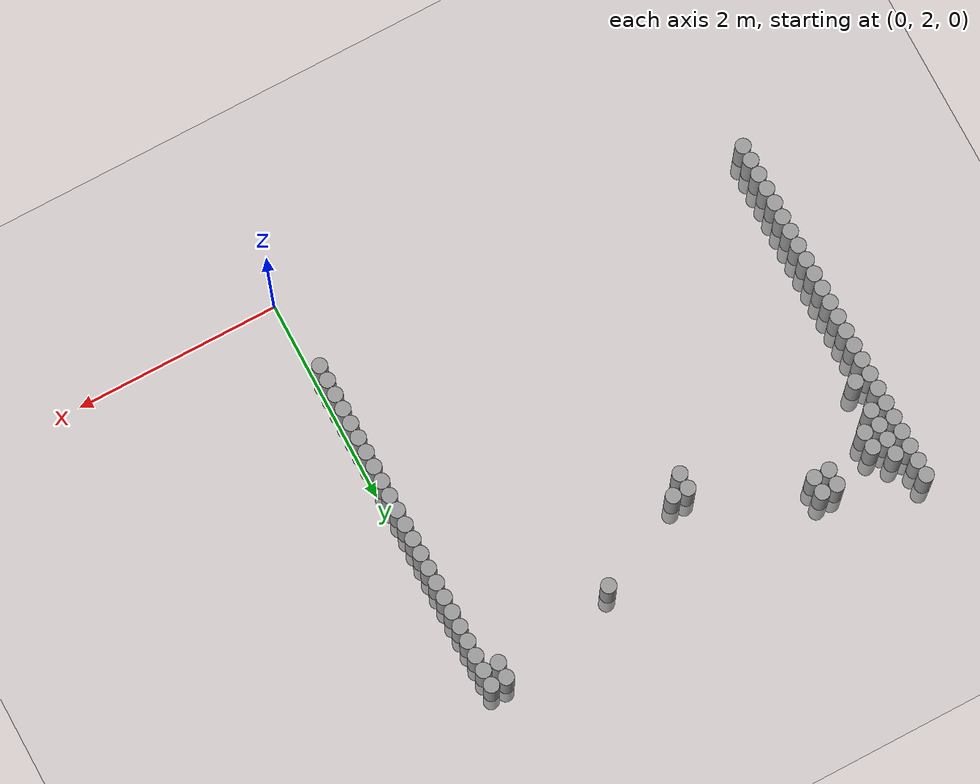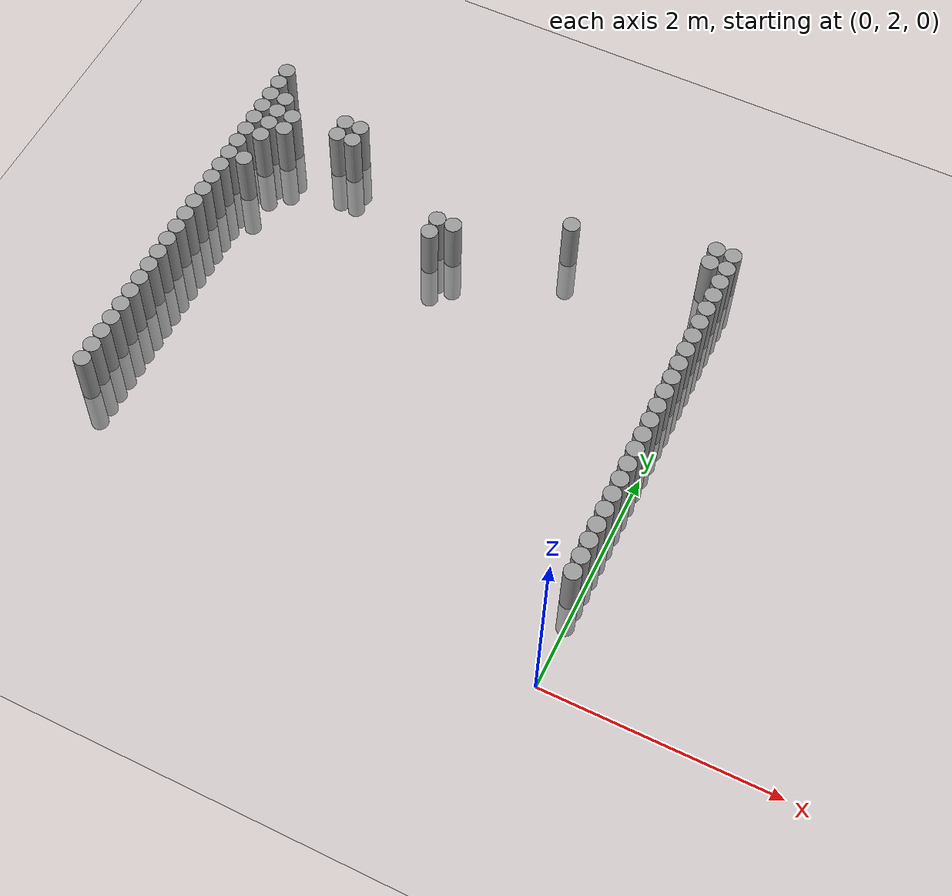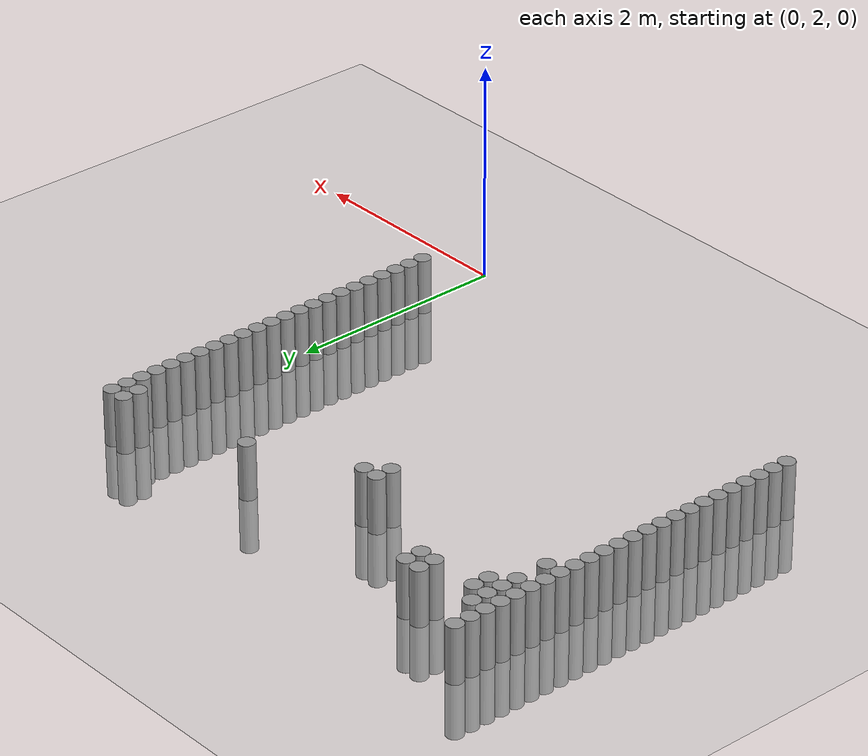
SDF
<sdf version="1.6">
 <world name="default">
  <model name="ground_plane">
   <static>1</static>
   <static>1</static>
   <link name="link">
    <collision name="collision">
     <geometry><plane><normal>0 0 1</normal><size>100 100</size></plane></geometry>
     <surface><friction><ode><mu>100</mu><mu2>50</mu2></ode></friction></surface>
    </collision>
    <visual name="visual">
     <cast_shadows>0</cast_shadows>
     <geometry><plane><normal>0 0 1</normal><size>100 100</size></plane></geometry>
     <material>
      <script><uri>file://media/materials/scripts/gazebo.material</uri><name>Gazebo/Grey</name></script>
     </material>
    </visual>
   </link>
  </model>
  <model name="unit_cylinder_64">
   <static>1</static>
   <pose>-0.075000 2.775000 0.000000 0.000000 0.000000 0.000000</pose>
   <link name="link">
    <inertial>
     <mass>1</mass>
     <inertia><ixx>0.145833</ixx><ixy>0</ixy><ixz>0</ixz><iyy>0.145833</iyy><iyz>0</iyz><izz>0.125</izz></inertia>
    </inertial>
    <collision name="collision">
     <geometry><cylinder><radius>0.075000</radius><length>1</length></cylinder></geometry>
    </collision>
    <visual name="visual">
     <geometry><cylinder><radius>0.075000</radius><length>1</length></cylinder></geometry>
     <material>
      <script><name>Gazebo/Grey</name><uri>file://media/materials/scripts/gazebo.material</uri></script>
     </material>
    </visual>
   </link>
  </model>
  <model name="unit_cylinder_65">
   <static>1</static>
   <pose>-4.425000 2.775000 0.000000 0.000000 0.000000 0.000000</pose>
   <link name="link">
    <inertial>
     <mass>1</mass>
     <inertia><ixx>0.145833</ixx><ixy>0</ixy><ixz>0</ixz><iyy>0.145833</iyy><iyz>0</iyz><izz>0.125</izz></inertia>
    </inertial>
    <collision name="collision">
     <geometry><cylinder><radius>0.075000</radius><length>1</length></cylinder></geometry>
    </collision>
    <visual name="visual">
     <geometry><cylinder><radius>0.075000</radius><length>1</length></cylinder></geometry>
     <material>
      <script><name>Gazebo/Grey</name><uri>file://media/materials/scripts/gazebo.material</uri></script>
     </material>
    </visual>
   </link>
  </model>
  <model name="unit_cylinder_66">
   <static>1</static>
   <pose>-0.075000 2.925000 0.000000 0.000000 0.000000 0.000000</pose>
   <link name="link">
    <inertial>
     <mass>1</mass>
     <inertia><ixx>0.145833</ixx><ixy>0</ixy><ixz>0</ixz><iyy>0.145833</iyy><iyz>0</iyz><izz>0.125</izz></inertia>
    </inertial>
    <collision name="collision">
     <geometry><cylinder><radius>0.075000</radius><length>1</length></cylinder></geometry>
    </collision>
    <visual name="visual">
     <geometry><cylinder><radius>0.075000</radius><length>1</length></cylinder></geometry>
     <material>
      <script><name>Gazebo/Grey</name><uri>file://media/materials/scripts/gazebo.material</uri></script>
     </material>
    </visual>
   </link>
  </model>
  <model name="unit_cylinder_67">
   <static>1</static>
   <pose>-4.425000 2.925000 0.000000 0.000000 0.000000 0.000000</pose>
   <link name="link">
    <inertial>
     <mass>1</mass>
     <inertia><ixx>0.145833</ixx><ixy>0</ixy><ixz>0</ixz><iyy>0.145833</iyy><iyz>0</iyz><izz>0.125</izz></inertia>
    </inertial>
    <collision name="collision">
     <geometry><cylinder><radius>0.075000</radius><length>1</length></cylinder></geometry>
    </collision>
    <visual name="visual">
     <geometry><cylinder><radius>0.075000</radius><length>1</length></cylinder></geometry>
     <material>
      <script><name>Gazebo/Grey</name><uri>file://media/materials/scripts/gazebo.material</uri></script>
     </material>
    </visual>
   </link>
  </model>
  <model name="unit_cylinder_68">
   <static>1</static>
   <pose>-0.075000 3.075000 0.000000 0.000000 0.000000 0.000000</pose>
   <link name="link">
    <inertial>
     <mass>1</mass>
     <inertia><ixx>0.145833</ixx><ixy>0</ixy><ixz>0</ixz><iyy>0.145833</iyy><iyz>0</iyz><izz>0.125</izz></inertia>
    </inertial>
    <collision name="collision">
     <geometry><cylinder><radius>0.075000</radius><length>1</length></cylinder></geometry>
    </collision>
    <visual name="visual">
     <geometry><cylinder><radius>0.075000</radius><length>1</length></cylinder></geometry>
     <material>
      <script><name>Gazebo/Grey</name><uri>file://media/materials/scripts/gazebo.material</uri></script>
     </material>
    </visual>
   </link>
  </model>
  <model name="unit_cylinder_69">
   <static>1</static>
   <pose>-4.425000 3.075000 0.000000 0.000000 0.000000 0.000000</pose>
   <link name="link">
    <inertial>
     <mass>1</mass>
     <inertia><ixx>0.145833</ixx><ixy>0</ixy><ixz>0</ixz><iyy>0.145833</iyy><iyz>0</iyz><izz>0.125</izz></inertia>
    </inertial>
    <collision name="collision">
     <geometry><cylinder><radius>0.075000</radius><length>1</length></cylinder></geometry>
    </collision>
    <visual name="visual">
     <geometry><cylinder><radius>0.075000</radius><length>1</length></cylinder></geometry>
     <material>
      <script><name>Gazebo/Grey</name><uri>file://media/materials/scripts/gazebo.material</uri></script>
     </material>
    </visual>
   </link>
  </model>
  <model name="unit_cylinder_70">
   <static>1</static>
   <pose>-0.075000 3.225000 0.000000 0.000000 0.000000 0.000000</pose>
   <link name="link">
    <inertial>
     <mass>1</mass>
     <inertia><ixx>0.145833</ixx><ixy>0</ixy><ixz>0</ixz><iyy>0.145833</iyy><iyz>0</iyz><izz>0.125</izz></inertia>
    </inertial>
    <collision name="collision">
     <geometry><cylinder><radius>0.075000</radius><length>1</length></cylinder></geometry>
    </collision>
    <visual name="visual">
     <geometry><cylinder><radius>0.075000</radius><length>1</length></cylinder></geometry>
     <material>
      <script><name>Gazebo/Grey</name><uri>file://media/materials/scripts/gazebo.material</uri></script>
     </material>
    </visual>
   </link>
  </model>
  <model name="unit_cylinder_71">
   <static>1</static>
   <pose>-4.425000 3.225000 0.000000 0.000000 0.000000 0.000000</pose>
   <link name="link">
    <inertial>
     <mass>1</mass>
     <inertia><ixx>0.145833</ixx><ixy>0</ixy><ixz>0</ixz><iyy>0.145833</iyy><iyz>0</iyz><izz>0.125</izz></inertia>
    </inertial>
    <collision name="collision">
     <geometry><cylinder><radius>0.075000</radius><length>1</length></cylinder></geometry>
    </collision>
    <visual name="visual">
     <geometry><cylinder><radius>0.075000</radius><length>1</length></cylinder></geometry>
     <material>
      <script><name>Gazebo/Grey</name><uri>file://media/materials/scripts/gazebo.material</uri></script>
     </material>
    </visual>
   </link>
  </model>
  <model name="unit_cylinder_72">
   <static>1</static>
   <pose>-0.075000 3.375000 0.000000 0.000000 0.000000 0.000000</pose>
   <link name="link">
    <inertial>
     <mass>1</mass>
     <inertia><ixx>0.145833</ixx><ixy>0</ixy><ixz>0</ixz><iyy>0.145833</iyy><iyz>0</iyz><izz>0.125</izz></inertia>
    </inertial>
    <collision name="collision">
     <geometry><cylinder><radius>0.075000</radius><length>1</length></cylinder></geometry>
    </collision>
    <visual name="visual">
     <geometry><cylinder><radius>0.075000</radius><length>1</length></cylinder></geometry>
     <material>
      <script><name>Gazebo/Grey</name><uri>file://media/materials/scripts/gazebo.material</uri></script>
     </material>
    </visual>
   </link>
  </model>
  <model name="unit_cylinder_73">
   <static>1</static>
   <pose>-4.425000 3.375000 0.000000 0.000000 0.000000 0.000000</pose>
   <link name="link">
    <inertial>
     <mass>1</mass>
     <inertia><ixx>0.145833</ixx><ixy>0</ixy><ixz>0</ixz><iyy>0.145833</iyy><iyz>0</iyz><izz>0.125</izz></inertia>
    </inertial>
    <collision name="collision">
     <geometry><cylinder><radius>0.075000</radius><length>1</length></cylinder></geometry>
    </collision>
    <visual name="visual">
     <geometry><cylinder><radius>0.075000</radius><length>1</length></cylinder></geometry>
     <material>
      <script><name>Gazebo/Grey</name><uri>file://media/materials/scripts/gazebo.material</uri></script>
     </material>
    </visual>
   </link>
  </model>
  <model name="unit_cylinder_74">
   <static>1</static>
   <pose>-0.075000 3.525000 0.000000 0.000000 0.000000 0.000000</pose>
   <link name="link">
    <inertial>
     <mass>1</mass>
     <inertia><ixx>0.145833</ixx><ixy>0</ixy><ixz>0</ixz><iyy>0.145833</iyy><iyz>0</iyz><izz>0.125</izz></inertia>
    </inertial>
    <collision name="collision">
     <geometry><cylinder><radius>0.075000</radius><length>1</length></cylinder></geometry>
    </collision>
    <visual name="visual">
     <geometry><cylinder><radius>0.075000</radius><length>1</length></cylinder></geometry>
     <material>
      <script><name>Gazebo/Grey</name><uri>file://media/materials/scripts/gazebo.material</uri></script>
     </material>
    </visual>
   </link>
  </model>
  <model name="unit_cylinder_75">
   <static>1</static>
   <pose>-4.425000 3.525000 0.000000 0.000000 0.000000 0.000000</pose>
   <link name="link">
    <inertial>
     <mass>1</mass>
     <inertia><ixx>0.145833</ixx><ixy>0</ixy><ixz>0</ixz><iyy>0.145833</iyy><iyz>0</iyz><izz>0.125</izz></inertia>
    </inertial>
    <collision name="collision">
     <geometry><cylinder><radius>0.075000</radius><length>1</length></cylinder></geometry>
    </collision>
    <visual name="visual">
     <geometry><cylinder><radius>0.075000</radius><length>1</length></cylinder></geometry>
     <material>
      <script><name>Gazebo/Grey</name><uri>file://media/materials/scripts/gazebo.material</uri></script>
     </material>
    </visual>
   </link>
  </model>
  <model name="unit_cylinder_76">
   <static>1</static>
   <pose>-0.075000 3.675000 0.000000 0.000000 0.000000 0.000000</pose>
   <link name="link">
    <inertial>
     <mass>1</mass>
     <inertia><ixx>0.145833</ixx><ixy>0</ixy><ixz>0</ixz><iyy>0.145833</iyy><iyz>0</iyz><izz>0.125</izz></inertia>
    </inertial>
    <collision name="collision">
     <geometry><cylinder><radius>0.075000</radius><length>1</length></cylinder></geometry>
    </collision>
    <visual name="visual">
     <geometry><cylinder><radius>0.075000</radius><length>1</length></cylinder></geometry>
     <material>
      <script><name>Gazebo/Grey</name><uri>file://media/materials/scripts/gazebo.material</uri></script>
     </material>
    </visual>
   </link>
  </model>
  <model name="unit_cylinder_77">
   <static>1</static>
   <pose>-4.425000 3.675000 0.000000 0.000000 0.000000 0.000000</pose>
   <link name="link">
    <inertial>
     <mass>1</mass>
     <inertia><ixx>0.145833</ixx><ixy>0</ixy><ixz>0</ixz><iyy>0.145833</iyy><iyz>0</iyz><izz>0.125</izz></inertia>
    </inertial>
    <collision name="collision">
     <geometry><cylinder><radius>0.075000</radius><length>1</length></cylinder></geometry>
    </collision>
    <visual name="visual">
     <geometry><cylinder><radius>0.075000</radius><length>1</length></cylinder></geometry>
     <material>
      <script><name>Gazebo/Grey</name><uri>file://media/materials/scripts/gazebo.material</uri></script>
     </material>
    </visual>
   </link>
  </model>
  <model name="unit_cylinder_78">
   <static>1</static>
   <pose>-0.075000 3.825000 0.000000 0.000000 0.000000 0.000000</pose>
   <link name="link">
    <inertial>
     <mass>1</mass>
     <inertia><ixx>0.145833</ixx><ixy>0</ixy><ixz>0</ixz><iyy>0.145833</iyy><iyz>0</iyz><izz>0.125</izz></inertia>
    </inertial>
    <collision name="collision">
     <geometry><cylinder><radius>0.075000</radius><length>1</length></cylinder></geometry>
    </collision>
    <visual name="visual">
     <geometry><cylinder><radius>0.075000</radius><length>1</length></cylinder></geometry>
     <material>
      <script><name>Gazebo/Grey</name><uri>file://media/materials/scripts/gazebo.material</uri></script>
     </material>
    </visual>
   </link>
  </model>
  <model name="unit_cylinder_79">
   <static>1</static>
   <pose>-4.425000 3.825000 0.000000 0.000000 0.000000 0.000000</pose>
   <link name="link">
    <inertial>
     <mass>1</mass>
     <inertia><ixx>0.145833</ixx><ixy>0</ixy><ixz>0</ixz><iyy>0.145833</iyy><iyz>0</iyz><izz>0.125</izz></inertia>
    </inertial>
    <collision name="collision">
     <geometry><cylinder><radius>0.075000</radius><length>1</length></cylinder></geometry>
    </collision>
    <visual name="visual">
     <geometry><cylinder><radius>0.075000</radius><length>1</length></cylinder></geometry>
     <material>
      <script><name>Gazebo/Grey</name><uri>file://media/materials/scripts/gazebo.material</uri></script>
     </material>
    </visual>
   </link>
  </model>
  <model name="unit_cylinder_80">
   <static>1</static>
   <pose>-0.075000 3.975000 0.000000 0.000000 0.000000 0.000000</pose>
   <link name="link">
    <inertial>
     <mass>1</mass>
     <inertia><ixx>0.145833</ixx><ixy>0</ixy><ixz>0</ixz><iyy>0.145833</iyy><iyz>0</iyz><izz>0.125</izz></inertia>
    </inertial>
    <collision name="collision">
     <geometry><cylinder><radius>0.075000</radius><length>1</length></cylinder></geometry>
    </collision>
    <visual name="visual">
     <geometry><cylinder><radius>0.075000</radius><length>1</length></cylinder></geometry>
     <material>
      <script><name>Gazebo/Grey</name><uri>file://media/materials/scripts/gazebo.material</uri></script>
     </material>
    </visual>
   </link>
  </model>
  <model name="unit_cylinder_81">
   <static>1</static>
   <pose>-4.425000 3.975000 0.000000 0.000000 0.000000 0.000000</pose>
   <link name="link">
    <inertial>
     <mass>1</mass>
     <inertia><ixx>0.145833</ixx><ixy>0</ixy><ixz>0</ixz><iyy>0.145833</iyy><iyz>0</iyz><izz>0.125</izz></inertia>
    </inertial>
    <collision name="collision">
     <geometry><cylinder><radius>0.075000</radius><length>1</length></cylinder></geometry>
    </collision>
    <visual name="visual">
     <geometry><cylinder><radius>0.075000</radius><length>1</length></cylinder></geometry>
     <material>
      <script><name>Gazebo/Grey</name><uri>file://media/materials/scripts/gazebo.material</uri></script>
     </material>
    </visual>
   </link>
  </model>
  <model name="unit_cylinder_82">
   <static>1</static>
   <pose>-0.075000 4.125000 0.000000 0.000000 0.000000 0.000000</pose>
   <link name="link">
    <inertial>
     <mass>1</mass>
     <inertia><ixx>0.145833</ixx><ixy>0</ixy><ixz>0</ixz><iyy>0.145833</iyy><iyz>0</iyz><izz>0.125</izz></inertia>
    </inertial>
    <collision name="collision">
     <geometry><cylinder><radius>0.075000</radius><length>1</length></cylinder></geometry>
    </collision>
    <visual name="visual">
     <geometry><cylinder><radius>0.075000</radius><length>1</length></cylinder></geometry>
     <material>
      <script><name>Gazebo/Grey</name><uri>file://media/materials/scripts/gazebo.material</uri></script>
     </material>
    </visual>
   </link>
  </model>
  <model name="unit_cylinder_83">
   <static>1</static>
   <pose>-4.425000 4.125000 0.000000 0.000000 0.000000 0.000000</pose>
   <link name="link">
    <inertial>
     <mass>1</mass>
     <inertia><ixx>0.145833</ixx><ixy>0</ixy><ixz>0</ixz><iyy>0.145833</iyy><iyz>0</iyz><izz>0.125</izz></inertia>
    </inertial>
    <collision name="collision">
     <geometry><cylinder><radius>0.075000</radius><length>1</length></cylinder></geometry>
    </collision>
    <visual name="visual">
     <geometry><cylinder><radius>0.075000</radius><length>1</length></cylinder></geometry>
     <material>
      <script><name>Gazebo/Grey</name><uri>file://media/materials/scripts/gazebo.material</uri></script>
     </material>
    </visual>
   </link>
  </model>
  <model name="unit_cylinder_84">
   <static>1</static>
   <pose>-0.075000 4.275000 0.000000 0.000000 0.000000 0.000000</pose>
   <link name="link">
    <inertial>
     <mass>1</mass>
     <inertia><ixx>0.145833</ixx><ixy>0</ixy><ixz>0</ixz><iyy>0.145833</iyy><iyz>0</iyz><izz>0.125</izz></inertia>
    </inertial>
    <collision name="collision">
     <geometry><cylinder><radius>0.075000</radius><length>1</length></cylinder></geometry>
    </collision>
    <visual name="visual">
     <geometry><cylinder><radius>0.075000</radius><length>1</length></cylinder></geometry>
     <material>
      <script><name>Gazebo/Grey</name><uri>file://media/materials/scripts/gazebo.material</uri></script>
     </material>
    </visual>
   </link>
  </model>
  <model name="unit_cylinder_85">
   <static>1</static>
   <pose>-4.425000 4.275000 0.000000 0.000000 0.000000 0.000000</pose>
   <link name="link">
    <inertial>
     <mass>1</mass>
     <inertia><ixx>0.145833</ixx><ixy>0</ixy><ixz>0</ixz><iyy>0.145833</iyy><iyz>0</iyz><izz>0.125</izz></inertia>
    </inertial>
    <collision name="collision">
     <geometry><cylinder><radius>0.075000</radius><length>1</length></cylinder></geometry>
    </collision>
    <visual name="visual">
     <geometry><cylinder><radius>0.075000</radius><length>1</length></cylinder></geometry>
     <material>
      <script><name>Gazebo/Grey</name><uri>file://media/materials/scripts/gazebo.material</uri></script>
     </material>
    </visual>
   </link>
  </model>
  <model name="unit_cylinder_86">
   <static>1</static>
   <pose>-0.075000 4.425000 0.000000 0.000000 0.000000 0.000000</pose>
   <link name="link">
    <inertial>
     <mass>1</mass>
     <inertia><ixx>0.145833</ixx><ixy>0</ixy><ixz>0</ixz><iyy>0.145833</iyy><iyz>0</iyz><izz>0.125</izz></inertia>
    </inertial>
    <collision name="collision">
     <geometry><cylinder><radius>0.075000</radius><length>1</length></cylinder></geometry>
    </collision>
    <visual name="visual">
     <geometry><cylinder><radius>0.075000</radius><length>1</length></cylinder></geometry>
     <material>
      <script><name>Gazebo/Grey</name><uri>file://media/materials/scripts/gazebo.material</uri></script>
     </material>
    </visual>
   </link>
  </model>
  <model name="unit_cylinder_87">
   <static>1</static>
   <pose>-4.425000 4.425000 0.000000 0.000000 0.000000 0.000000</pose>
   <link name="link">
    <inertial>
     <mass>1</mass>
     <inertia><ixx>0.145833</ixx><ixy>0</ixy><ixz>0</ixz><iyy>0.145833</iyy><iyz>0</iyz><izz>0.125</izz></inertia>
    </inertial>
    <collision name="collision">
     <geometry><cylinder><radius>0.075000</radius><length>1</length></cylinder></geometry>
    </collision>
    <visual name="visual">
     <geometry><cylinder><radius>0.075000</radius><length>1</length></cylinder></geometry>
     <material>
      <script><name>Gazebo/Grey</name><uri>file://media/materials/scripts/gazebo.material</uri></script>
     </material>
    </visual>
   </link>
  </model>
  <model name="unit_cylinder_88">
   <static>1</static>
   <pose>-0.075000 4.575000 0.000000 0.000000 0.000000 0.000000</pose>
   <link name="link">
    <inertial>
     <mass>1</mass>
     <inertia><ixx>0.145833</ixx><ixy>0</ixy><ixz>0</ixz><iyy>0.145833</iyy><iyz>0</iyz><izz>0.125</izz></inertia>
    </inertial>
    <collision name="collision">
     <geometry><cylinder><radius>0.075000</radius><length>1</length></cylinder></geometry>
    </collision>
    <visual name="visual">
     <geometry><cylinder><radius>0.075000</radius><length>1</length></cylinder></geometry>
     <material>
      <script><name>Gazebo/Grey</name><uri>file://media/materials/scripts/gazebo.material</uri></script>
     </material>
    </visual>
   </link>
  </model>
  <model name="unit_cylinder_89">
   <static>1</static>
   <pose>-4.425000 4.575000 0.000000 0.000000 0.000000 0.000000</pose>
   <link name="link">
    <inertial>
     <mass>1</mass>
     <inertia><ixx>0.145833</ixx><ixy>0</ixy><ixz>0</ixz><iyy>0.145833</iyy><iyz>0</iyz><izz>0.125</izz></inertia>
    </inertial>
    <collision name="collision">
     <geometry><cylinder><radius>0.075000</radius><length>1</length></cylinder></geometry>
    </collision>
    <visual name="visual">
     <geometry><cylinder><radius>0.075000</radius><length>1</length></cylinder></geometry>
     <material>
      <script><name>Gazebo/Grey</name><uri>file://media/materials/scripts/gazebo.material</uri></script>
     </material>
    </visual>
   </link>
  </model>
  <model name="unit_cylinder_90">
   <static>1</static>
   <pose>-0.075000 4.725000 0.000000 0.000000 0.000000 0.000000</pose>
   <link name="link">
    <inertial>
     <mass>1</mass>
     <inertia><ixx>0.145833</ixx><ixy>0</ixy><ixz>0</ixz><iyy>0.145833</iyy><iyz>0</iyz><izz>0.125</izz></inertia>
    </inertial>
    <collision name="collision">
     <geometry><cylinder><radius>0.075000</radius><length>1</length></cylinder></geometry>
    </collision>
    <visual name="visual">
     <geometry><cylinder><radius>0.075000</radius><length>1</length></cylinder></geometry>
     <material>
      <script><name>Gazebo/Grey</name><uri>file://media/materials/scripts/gazebo.material</uri></script>
     </material>
    </visual>
   </link>
  </model>
  <model name="unit_cylinder_91">
   <static>1</static>
   <pose>-4.425000 4.725000 0.000000 0.000000 0.000000 0.000000</pose>
   <link name="link">
    <inertial>
     <mass>1</mass>
     <inertia><ixx>0.145833</ixx><ixy>0</ixy><ixz>0</ixz><iyy>0.145833</iyy><iyz>0</iyz><izz>0.125</izz></inertia>
    </inertial>
    <collision name="collision">
     <geometry><cylinder><radius>0.075000</radius><length>1</length></cylinder></geometry>
    </collision>
    <visual name="visual">
     <geometry><cylinder><radius>0.075000</radius><length>1</length></cylinder></geometry>
     <material>
      <script><name>Gazebo/Grey</name><uri>file://media/materials/scripts/gazebo.material</uri></script>
     </material>
    </visual>
   </link>
  </model>
  <model name="unit_cylinder_92">
   <static>1</static>
   <pose>-0.075000 4.875000 0.000000 0.000000 0.000000 0.000000</pose>
   <link name="link">
    <inertial>
     <mass>1</mass>
     <inertia><ixx>0.145833</ixx><ixy>0</ixy><ixz>0</ixz><iyy>0.145833</iyy><iyz>0</iyz><izz>0.125</izz></inertia>
    </inertial>
    <collision name="collision">
     <geometry><cylinder><radius>0.075000</radius><length>1</length></cylinder></geometry>
    </collision>
    <visual name="visual">
     <geometry><cylinder><radius>0.075000</radius><length>1</length></cylinder></geometry>
     <material>
      <script><name>Gazebo/Grey</name><uri>file://media/materials/scripts/gazebo.material</uri></script>
     </material>
    </visual>
   </link>
  </model>
  <model name="unit_cylinder_93">
   <static>1</static>
   <pose>-4.425000 4.875000 0.000000 0.000000 0.000000 0.000000</pose>
   <link name="link">
    <inertial>
     <mass>1</mass>
     <inertia><ixx>0.145833</ixx><ixy>0</ixy><ixz>0</ixz><iyy>0.145833</iyy><iyz>0</iyz><izz>0.125</izz></inertia>
    </inertial>
    <collision name="collision">
     <geometry><cylinder><radius>0.075000</radius><length>1</length></cylinder></geometry>
    </collision>
    <visual name="visual">
     <geometry><cylinder><radius>0.075000</radius><length>1</length></cylinder></geometry>
     <material>
      <script><name>Gazebo/Grey</name><uri>file://media/materials/scripts/gazebo.material</uri></script>
     </material>
    </visual>
   </link>
  </model>
  <model name="unit_cylinder_94">
   <static>1</static>
   <pose>-0.075000 5.025000 0.000000 0.000000 0.000000 0.000000</pose>
   <link name="link">
    <inertial>
     <mass>1</mass>
     <inertia><ixx>0.145833</ixx><ixy>0</ixy><ixz>0</ixz><iyy>0.145833</iyy><iyz>0</iyz><izz>0.125</izz></inertia>
    </inertial>
    <collision name="collision">
     <geometry><cylinder><radius>0.075000</radius><length>1</length></cylinder></geometry>
    </collision>
    <visual name="visual">
     <geometry><cylinder><radius>0.075000</radius><length>1</length></cylinder></geometry>
     <material>
      <script><name>Gazebo/Grey</name><uri>file://media/materials/scripts/gazebo.material</uri></script>
     </material>
    </visual>
   </link>
  </model>
  <model name="unit_cylinder_95">
   <static>1</static>
   <pose>-4.425000 5.025000 0.000000 0.000000 0.000000 0.000000</pose>
   <link name="link">
    <inertial>
     <mass>1</mass>
     <inertia><ixx>0.145833</ixx><ixy>0</ixy><ixz>0</ixz><iyy>0.145833</iyy><iyz>0</iyz><izz>0.125</izz></inertia>
    </inertial>
    <collision name="collision">
     <geometry><cylinder><radius>0.075000</radius><length>1</length></cylinder></geometry>
    </collision>
    <visual name="visual">
     <geometry><cylinder><radius>0.075000</radius><length>1</length></cylinder></geometry>
     <material>
      <script><name>Gazebo/Grey</name><uri>file://media/materials/scripts/gazebo.material</uri></script>
     </material>
    </visual>
   </link>
  </model>
  <model name="unit_cylinder_96">
   <static>1</static>
   <pose>-4.425000 5.175000 0.000000 0.000000 0.000000 0.000000</pose>
   <link name="link">
    <inertial>
     <mass>1</mass>
     <inertia><ixx>0.145833</ixx><ixy>0</ixy><ixz>0</ixz><iyy>0.145833</iyy><iyz>0</iyz><izz>0.125</izz></inertia>
    </inertial>
    <collision name="collision">
     <geometry><cylinder><radius>0.075000</radius><length>1</length></cylinder></geometry>
    </collision>
    <visual name="visual">
     <geometry><cylinder><radius>0.075000</radius><length>1</length></cylinder></geometry>
     <material>
      <script><name>Gazebo/Grey</name><uri>file://media/materials/scripts/gazebo.material</uri></script>
     </material>
    </visual>
   </link>
  </model>
  <model name="unit_cylinder_97">
   <static>1</static>
   <pose>-4.425000 5.325000 0.000000 0.000000 0.000000 0.000000</pose>
   <link name="link">
    <inertial>
     <mass>1</mass>
     <inertia><ixx>0.145833</ixx><ixy>0</ixy><ixz>0</ixz><iyy>0.145833</iyy><iyz>0</iyz><izz>0.125</izz></inertia>
    </inertial>
    <collision name="collision">
     <geometry><cylinder><radius>0.075000</radius><length>1</length></cylinder></geometry>
    </collision>
    <visual name="visual">
     <geometry><cylinder><radius>0.075000</radius><length>1</length></cylinder></geometry>
     <material>
      <script><name>Gazebo/Grey</name><uri>file://media/materials/scripts/gazebo.material</uri></script>
     </material>
    </visual>
   </link>
  </model>
  <model name="unit_cylinder_98">
   <static>1</static>
   <pose>-4.425000 5.475000 0.000000 0.000000 0.000000 0.000000</pose>
   <link name="link">
    <inertial>
     <mass>1</mass>
     <inertia><ixx>0.145833</ixx><ixy>0</ixy><ixz>0</ixz><iyy>0.145833</iyy><iyz>0</iyz><izz>0.125</izz></inertia>
    </inertial>
    <collision name="collision">
     <geometry><cylinder><radius>0.075000</radius><length>1</length></cylinder></geometry>
    </collision>
    <visual name="visual">
     <geometry><cylinder><radius>0.075000</radius><length>1</length></cylinder></geometry>
     <material>
      <script><name>Gazebo/Grey</name><uri>file://media/materials/scripts/gazebo.material</uri></script>
     </material>
    </visual>
   </link>
  </model>
  <model name="unit_cylinder_99">
   <static>1</static>
   <pose>-4.425000 5.625000 0.000000 0.000000 0.000000 0.000000</pose>
   <link name="link">
    <inertial>
     <mass>1</mass>
     <inertia><ixx>0.145833</ixx><ixy>0</ixy><ixz>0</ixz><iyy>0.145833</iyy><iyz>0</iyz><izz>0.125</izz></inertia>
    </inertial>
    <collision name="collision">
     <geometry><cylinder><radius>0.075000</radius><length>1</length></cylinder></geometry>
    </collision>
    <visual name="visual">
     <geometry><cylinder><radius>0.075000</radius><length>1</length></cylinder></geometry>
     <material>
      <script><name>Gazebo/Grey</name><uri>file://media/materials/scripts/gazebo.material</uri></script>
     </material>
    </visual>
   </link>
  </model>
  <model name="unit_cylinder_100">
   <static>1</static>
   <pose>-4.425000 5.775000 0.000000 0.000000 0.000000 0.000000</pose>
   <link name="link">
    <inertial>
     <mass>1</mass>
     <inertia><ixx>0.145833</ixx><ixy>0</ixy><ixz>0</ixz><iyy>0.145833</iyy><iyz>0</iyz><izz>0.125</izz></inertia>
    </inertial>
    <collision name="collision">
     <geometry><cylinder><radius>0.075000</radius><length>1</length></cylinder></geometry>
    </collision>
    <visual name="visual">
     <geometry><cylinder><radius>0.075000</radius><length>1</length></cylinder></geometry>
     <material>
      <script><name>Gazebo/Grey</name><uri>file://media/materials/scripts/gazebo.material</uri></script>
     </material>
    </visual>
   </link>
  </model>
  <model name="unit_cylinder_101">
   <static>1</static>
   <pose>-4.425000 5.925000 0.000000 0.000000 0.000000 0.000000</pose>
   <link name="link">
    <inertial>
     <mass>1</mass>
     <inertia><ixx>0.145833</ixx><ixy>0</ixy><ixz>0</ixz><iyy>0.145833</iyy><iyz>0</iyz><izz>0.125</izz></inertia>
    </inertial>
    <collision name="collision">
     <geometry><cylinder><radius>0.075000</radius><length>1</length></cylinder></geometry>
    </collision>
    <visual name="visual">
     <geometry><cylinder><radius>0.075000</radius><length>1</length></cylinder></geometry>
     <material>
      <script><name>Gazebo/Grey</name><uri>file://media/materials/scripts/gazebo.material</uri></script>
     </material>
    </visual>
   </link>
  </model>
  <model name="unit_cylinder_102">
   <static>1</static>
   <pose>-4.425000 6.075000 0.000000 0.000000 0.000000 0.000000</pose>
   <link name="link">
    <inertial>
     <mass>1</mass>
     <inertia><ixx>0.145833</ixx><ixy>0</ixy><ixz>0</ixz><iyy>0.145833</iyy><iyz>0</iyz><izz>0.125</izz></inertia>
    </inertial>
    <collision name="collision">
     <geometry><cylinder><radius>0.075000</radius><length>1</length></cylinder></geometry>
    </collision>
    <visual name="visual">
     <geometry><cylinder><radius>0.075000</radius><length>1</length></cylinder></geometry>
     <material>
      <script><name>Gazebo/Grey</name><uri>file://media/materials/scripts/gazebo.material</uri></script>
     </material>
    </visual>
   </link>
  </model>
  <model name="unit_cylinder_103">
   <static>1</static>
   <pose>-4.425000 6.225000 0.000000 0.000000 0.000000 0.000000</pose>
   <link name="link">
    <inertial>
     <mass>1</mass>
     <inertia><ixx>0.145833</ixx><ixy>0</ixy><ixz>0</ixz><iyy>0.145833</iyy><iyz>0</iyz><izz>0.125</izz></inertia>
    </inertial>
    <collision name="collision">
     <geometry><cylinder><radius>0.075000</radius><length>1</length></cylinder></geometry>
    </collision>
    <visual name="visual">
     <geometry><cylinder><radius>0.075000</radius><length>1</length></cylinder></geometry>
     <material>
      <script><name>Gazebo/Grey</name><uri>file://media/materials/scripts/gazebo.material</uri></script>
     </material>
    </visual>
   </link>
  </model>
  <model name="unit_cylinder_126">
   <static>1</static>
   <pose>-4.275000 5.175000 0.000000 0.000000 0.000000 0.000000</pose>
   <link name="link">
    <inertial>
     <mass>1</mass>
     <inertia><ixx>0.145833</ixx><ixy>0</ixy><ixz>0</ixz><iyy>0.145833</iyy><iyz>0</iyz><izz>0.125</izz></inertia>
    </inertial>
    <collision name="collision">
     <geometry><cylinder><radius>0.075000</radius><length>1</length></cylinder></geometry>
    </collision>
    <visual name="visual">
     <geometry><cylinder><radius>0.075000</radius><length>1</length></cylinder></geometry>
     <material>
      <script><name>Gazebo/Grey</name><uri>file://media/materials/scripts/gazebo.material</uri></script>
     </material>
    </visual>
   </link>
  </model>
  <model name="unit_cylinder_127">
   <static>1</static>
   <pose>-4.275000 5.475000 0.000000 0.000000 0.000000 0.000000</pose>
   <link name="link">
    <inertial>
     <mass>1</mass>
     <inertia><ixx>0.145833</ixx><ixy>0</ixy><ixz>0</ixz><iyy>0.145833</iyy><iyz>0</iyz><izz>0.125</izz></inertia>
    </inertial>
    <collision name="collision">
     <geometry><cylinder><radius>0.075000</radius><length>1</length></cylinder></geometry>
    </collision>
    <visual name="visual">
     <geometry><cylinder><radius>0.075000</radius><length>1</length></cylinder></geometry>
     <material>
      <script><name>Gazebo/Grey</name><uri>file://media/materials/scripts/gazebo.material</uri></script>
     </material>
    </visual>
   </link>
  </model>
  <model name="unit_cylinder_128">
   <static>1</static>
   <pose>-4.275000 5.625000 0.000000 0.000000 0.000000 0.000000</pose>
   <link name="link">
    <inertial>
     <mass>1</mass>
     <inertia><ixx>0.145833</ixx><ixy>0</ixy><ixz>0</ixz><iyy>0.145833</iyy><iyz>0</iyz><izz>0.125</izz></inertia>
    </inertial>
    <collision name="collision">
     <geometry><cylinder><radius>0.075000</radius><length>1</length></cylinder></geometry>
    </collision>
    <visual name="visual">
     <geometry><cylinder><radius>0.075000</radius><length>1</length></cylinder></geometry>
     <material>
      <script><name>Gazebo/Grey</name><uri>file://media/materials/scripts/gazebo.material</uri></script>
     </material>
    </visual>
   </link>
  </model>
  <model name="unit_cylinder_129">
   <static>1</static>
   <pose>-4.275000 5.775000 0.000000 0.000000 0.000000 0.000000</pose>
   <link name="link">
    <inertial>
     <mass>1</mass>
     <inertia><ixx>0.145833</ixx><ixy>0</ixy><ixz>0</ixz><iyy>0.145833</iyy><iyz>0</iyz><izz>0.125</izz></inertia>
    </inertial>
    <collision name="collision">
     <geometry><cylinder><radius>0.075000</radius><length>1</length></cylinder></geometry>
    </collision>
    <visual name="visual">
     <geometry><cylinder><radius>0.075000</radius><length>1</length></cylinder></geometry>
     <material>
      <script><name>Gazebo/Grey</name><uri>file://media/materials/scripts/gazebo.material</uri></script>
     </material>
    </visual>
   </link>
  </model>
  <model name="unit_cylinder_130">
   <static>1</static>
   <pose>-4.275000 5.925000 0.000000 0.000000 0.000000 0.000000</pose>
   <link name="link">
    <inertial>
     <mass>1</mass>
     <inertia><ixx>0.145833</ixx><ixy>0</ixy><ixz>0</ixz><iyy>0.145833</iyy><iyz>0</iyz><izz>0.125</izz></inertia>
    </inertial>
    <collision name="collision">
     <geometry><cylinder><radius>0.075000</radius><length>1</length></cylinder></geometry>
    </collision>
    <visual name="visual">
     <geometry><cylinder><radius>0.075000</radius><length>1</length></cylinder></geometry>
     <material>
      <script><name>Gazebo/Grey</name><uri>file://media/materials/scripts/gazebo.material</uri></script>
     </material>
    </visual>
   </link>
  </model>
  <model name="unit_cylinder_139">
   <static>1</static>
   <pose>-4.125000 5.625000 0.000000 0.000000 0.000000 0.000000</pose>
   <link name="link">
    <inertial>
     <mass>1</mass>
     <inertia><ixx>0.145833</ixx><ixy>0</ixy><ixz>0</ixz><iyy>0.145833</iyy><iyz>0</iyz><izz>0.125</izz></inertia>
    </inertial>
    <collision name="collision">
     <geometry><cylinder><radius>0.075000</radius><length>1</length></cylinder></geometry>
    </collision>
    <visual name="visual">
     <geometry><cylinder><radius>0.075000</radius><length>1</length></cylinder></geometry>
     <material>
      <script><name>Gazebo/Grey</name><uri>file://media/materials/scripts/gazebo.material</uri></script>
     </material>
    </visual>
   </link>
  </model>
  <model name="unit_cylinder_140">
   <static>1</static>
   <pose>-4.125000 5.775000 0.000000 0.000000 0.000000 0.000000</pose>
   <link name="link">
    <inertial>
     <mass>1</mass>
     <inertia><ixx>0.145833</ixx><ixy>0</ixy><ixz>0</ixz><iyy>0.145833</iyy><iyz>0</iyz><izz>0.125</izz></inertia>
    </inertial>
    <collision name="collision">
     <geometry><cylinder><radius>0.075000</radius><length>1</length></cylinder></geometry>
    </collision>
    <visual name="visual">
     <geometry><cylinder><radius>0.075000</radius><length>1</length></cylinder></geometry>
     <material>
      <script><name>Gazebo/Grey</name><uri>file://media/materials/scripts/gazebo.material</uri></script>
     </material>
    </visual>
   </link>
  </model>
  <model name="unit_cylinder_147">
   <static>1</static>
   <pose>-3.675000 5.775000 0.000000 0.000000 0.000000 0.000000</pose>
   <link name="link">
    <inertial>
     <mass>1</mass>
     <inertia><ixx>0.145833</ixx><ixy>0</ixy><ixz>0</ixz><iyy>0.145833</iyy><iyz>0</iyz><izz>0.125</izz></inertia>
    </inertial>
    <collision name="collision">
     <geometry><cylinder><radius>0.075000</radius><length>1</length></cylinder></geometry>
    </collision>
    <visual name="visual">
     <geometry><cylinder><radius>0.075000</radius><length>1</length></cylinder></geometry>
     <material>
      <script><name>Gazebo/Grey</name><uri>file://media/materials/scripts/gazebo.material</uri></script>
     </material>
    </visual>
   </link>
  </model>
  <model name="unit_cylinder_148">
   <static>1</static>
   <pose>-3.675000 5.925000 0.000000 0.000000 0.000000 0.000000</pose>
   <link name="link">
    <inertial>
     <mass>1</mass>
     <inertia><ixx>0.145833</ixx><ixy>0</ixy><ixz>0</ixz><iyy>0.145833</iyy><iyz>0</iyz><izz>0.125</izz></inertia>
    </inertial>
    <collision name="collision">
     <geometry><cylinder><radius>0.075000</radius><length>1</length></cylinder></geometry>
    </collision>
    <visual name="visual">
     <geometry><cylinder><radius>0.075000</radius><length>1</length></cylinder></geometry>
     <material>
      <script><name>Gazebo/Grey</name><uri>file://media/materials/scripts/gazebo.material</uri></script>
     </material>
    </visual>
   </link>
  </model>
  <model name="unit_cylinder_153">
   <static>1</static>
   <pose>-3.525000 5.775000 0.000000 0.000000 0.000000 0.000000</pose>
   <link name="link">
    <inertial>
     <mass>1</mass>
     <inertia><ixx>0.145833</ixx><ixy>0</ixy><ixz>0</ixz><iyy>0.145833</iyy><iyz>0</iyz><izz>0.125</izz></inertia>
    </inertial>
    <collision name="collision">
     <geometry><cylinder><radius>0.075000</radius><length>1</length></cylinder></geometry>
    </collision>
    <visual name="visual">
     <geometry><cylinder><radius>0.075000</radius><length>1</length></cylinder></geometry>
     <material>
      <script><name>Gazebo/Grey</name><uri>file://media/materials/scripts/gazebo.material</uri></script>
     </material>
    </visual>
   </link>
  </model>
  <model name="unit_cylinder_154">
   <static>1</static>
   <pose>-3.525000 5.925000 0.000000 0.000000 0.000000 0.000000</pose>
   <link name="link">
    <inertial>
     <mass>1</mass>
     <inertia><ixx>0.145833</ixx><ixy>0</ixy><ixz>0</ixz><iyy>0.145833</iyy><iyz>0</iyz><izz>0.125</izz></inertia>
    </inertial>
    <collision name="collision">
     <geometry><cylinder><radius>0.075000</radius><length>1</length></cylinder></geometry>
    </collision>
    <visual name="visual">
     <geometry><cylinder><radius>0.075000</radius><length>1</length></cylinder></geometry>
     <material>
      <script><name>Gazebo/Grey</name><uri>file://media/materials/scripts/gazebo.material</uri></script>
     </material>
    </visual>
   </link>
  </model>
  <model name="unit_cylinder_171">
   <static>1</static>
   <pose>-2.475000 5.175000 0.000000 0.000000 0.000000 0.000000</pose>
   <link name="link">
    <inertial>
     <mass>1</mass>
     <inertia><ixx>0.145833</ixx><ixy>0</ixy><ixz>0</ixz><iyy>0.145833</iyy><iyz>0</iyz><izz>0.125</izz></inertia>
    </inertial>
    <collision name="collision">
     <geometry><cylinder><radius>0.075000</radius><length>1</length></cylinder></geometry>
    </collision>
    <visual name="visual">
     <geometry><cylinder><radius>0.075000</radius><length>1</length></cylinder></geometry>
     <material>
      <script><name>Gazebo/Grey</name><uri>file://media/materials/scripts/gazebo.material</uri></script>
     </material>
    </visual>
   </link>
  </model>
  <model name="unit_cylinder_172">
   <static>1</static>
   <pose>-2.475000 5.325000 0.000000 0.000000 0.000000 0.000000</pose>
   <link name="link">
    <inertial>
     <mass>1</mass>
     <inertia><ixx>0.145833</ixx><ixy>0</ixy><ixz>0</ixz><iyy>0.145833</iyy><iyz>0</iyz><izz>0.125</izz></inertia>
    </inertial>
    <collision name="collision">
     <geometry><cylinder><radius>0.075000</radius><length>1</length></cylinder></geometry>
    </collision>
    <visual name="visual">
     <geometry><cylinder><radius>0.075000</radius><length>1</length></cylinder></geometry>
     <material>
      <script><name>Gazebo/Grey</name><uri>file://media/materials/scripts/gazebo.material</uri></script>
     </material>
    </visual>
   </link>
  </model>
  <model name="unit_cylinder_175">
   <static>1</static>
   <pose>-2.325000 5.325000 0.000000 0.000000 0.000000 0.000000</pose>
   <link name="link">
    <inertial>
     <mass>1</mass>
     <inertia><ixx>0.145833</ixx><ixy>0</ixy><ixz>0</ixz><iyy>0.145833</iyy><iyz>0</iyz><izz>0.125</izz></inertia>
    </inertial>
    <collision name="collision">
     <geometry><cylinder><radius>0.075000</radius><length>1</length></cylinder></geometry>
    </collision>
    <visual name="visual">
     <geometry><cylinder><radius>0.075000</radius><length>1</length></cylinder></geometry>
     <material>
      <script><name>Gazebo/Grey</name><uri>file://media/materials/scripts/gazebo.material</uri></script>
     </material>
    </visual>
   </link>
  </model>
  <model name="unit_cylinder_187">
   <static>1</static>
   <pose>-1.425000 5.775000 0.000000 0.000000 0.000000 0.000000</pose>
   <link name="link">
    <inertial>
     <mass>1</mass>
     <inertia><ixx>0.145833</ixx><ixy>0</ixy><ixz>0</ixz><iyy>0.145833</iyy><iyz>0</iyz><izz>0.125</izz></inertia>
    </inertial>
    <collision name="collision">
     <geometry><cylinder><radius>0.075000</radius><length>1</length></cylinder></geometry>
    </collision>
    <visual name="visual">
     <geometry><cylinder><radius>0.075000</radius><length>1</length></cylinder></geometry>
     <material>
      <script><name>Gazebo/Grey</name><uri>file://media/materials/scripts/gazebo.material</uri></script>
     </material>
    </visual>
   </link>
  </model>
  <model name="unit_cylinder_211">
   <static>1</static>
   <pose>-0.225000 5.925000 0.000000 0.000000 0.000000 0.000000</pose>
   <link name="link">
    <inertial>
     <mass>1</mass>
     <inertia><ixx>0.145833</ixx><ixy>0</ixy><ixz>0</ixz><iyy>0.145833</iyy><iyz>0</iyz><izz>0.125</izz></inertia>
    </inertial>
    <collision name="collision">
     <geometry><cylinder><radius>0.075000</radius><length>1</length></cylinder></geometry>
    </collision>
    <visual name="visual">
     <geometry><cylinder><radius>0.075000</radius><length>1</length></cylinder></geometry>
     <material>
      <script><name>Gazebo/Grey</name><uri>file://media/materials/scripts/gazebo.material</uri></script>
     </material>
    </visual>
   </link>
  </model>
  <model name="unit_cylinder_212">
   <static>1</static>
   <pose>-0.225000 6.075000 0.000000 0.000000 0.000000 0.000000</pose>
   <link name="link">
    <inertial>
     <mass>1</mass>
     <inertia><ixx>0.145833</ixx><ixy>0</ixy><ixz>0</ixz><iyy>0.145833</iyy><iyz>0</iyz><izz>0.125</izz></inertia>
    </inertial>
    <collision name="collision">
     <geometry><cylinder><radius>0.075000</radius><length>1</length></cylinder></geometry>
    </collision>
    <visual name="visual">
     <geometry><cylinder><radius>0.075000</radius><length>1</length></cylinder></geometry>
     <material>
      <script><name>Gazebo/Grey</name><uri>file://media/materials/scripts/gazebo.material</uri></script>
     </material>
    </visual>
   </link>
  </model>
  <model name="unit_cylinder_226">
   <static>1</static>
   <pose>-0.075000 5.175000 0.000000 0.000000 0.000000 0.000000</pose>
   <link name="link">
    <inertial>
     <mass>1</mass>
     <inertia><ixx>0.145833</ixx><ixy>0</ixy><ixz>0</ixz><iyy>0.145833</iyy><iyz>0</iyz><izz>0.125</izz></inertia>
    </inertial>
    <collision name="collision">
     <geometry><cylinder><radius>0.075000</radius><length>1</length></cylinder></geometry>
    </collision>
    <visual name="visual">
     <geometry><cylinder><radius>0.075000</radius><length>1</length></cylinder></geometry>
     <material>
      <script><name>Gazebo/Grey</name><uri>file://media/materials/scripts/gazebo.material</uri></script>
     </material>
    </visual>
   </link>
  </model>
  <model name="unit_cylinder_227">
   <static>1</static>
   <pose>-0.075000 5.325000 0.000000 0.000000 0.000000 0.000000</pose>
   <link name="link">
    <inertial>
     <mass>1</mass>
     <inertia><ixx>0.145833</ixx><ixy>0</ixy><ixz>0</ixz><iyy>0.145833</iyy><iyz>0</iyz><izz>0.125</izz></inertia>
    </inertial>
    <collision name="collision">
     <geometry><cylinder><radius>0.075000</radius><length>1</length></cylinder></geometry>
    </collision>
    <visual name="visual">
     <geometry><cylinder><radius>0.075000</radius><length>1</length></cylinder></geometry>
     <material>
      <script><name>Gazebo/Grey</name><uri>file://media/materials/scripts/gazebo.material</uri></script>
     </material>
    </visual>
   </link>
  </model>
  <model name="unit_cylinder_228">
   <static>1</static>
   <pose>-0.075000 5.475000 0.000000 0.000000 0.000000 0.000000</pose>
   <link name="link">
    <inertial>
     <mass>1</mass>
     <inertia><ixx>0.145833</ixx><ixy>0</ixy><ixz>0</ixz><iyy>0.145833</iyy><iyz>0</iyz><izz>0.125</izz></inertia>
    </inertial>
    <collision name="collision">
     <geometry><cylinder><radius>0.075000</radius><length>1</length></cylinder></geometry>
    </collision>
    <visual name="visual">
     <geometry><cylinder><radius>0.075000</radius><length>1</length></cylinder></geometry>
     <material>
      <script><name>Gazebo/Grey</name><uri>file://media/materials/scripts/gazebo.material</uri></script>
     </material>
    </visual>
   </link>
  </model>
  <model name="unit_cylinder_229">
   <static>1</static>
   <pose>-0.075000 5.625000 0.000000 0.000000 0.000000 0.000000</pose>
   <link name="link">
    <inertial>
     <mass>1</mass>
     <inertia><ixx>0.145833</ixx><ixy>0</ixy><ixz>0</ixz><iyy>0.145833</iyy><iyz>0</iyz><izz>0.125</izz></inertia>
    </inertial>
    <collision name="collision">
     <geometry><cylinder><radius>0.075000</radius><length>1</length></cylinder></geometry>
    </collision>
    <visual name="visual">
     <geometry><cylinder><radius>0.075000</radius><length>1</length></cylinder></geometry>
     <material>
      <script><name>Gazebo/Grey</name><uri>file://media/materials/scripts/gazebo.material</uri></script>
     </material>
    </visual>
   </link>
  </model>
  <model name="unit_cylinder_230">
   <static>1</static>
   <pose>-0.075000 5.775000 0.000000 0.000000 0.000000 0.000000</pose>
   <link name="link">
    <inertial>
     <mass>1</mass>
     <inertia><ixx>0.145833</ixx><ixy>0</ixy><ixz>0</ixz><iyy>0.145833</iyy><iyz>0</iyz><izz>0.125</izz></inertia>
    </inertial>
    <collision name="collision">
     <geometry><cylinder><radius>0.075000</radius><length>1</length></cylinder></geometry>
    </collision>
    <visual name="visual">
     <geometry><cylinder><radius>0.075000</radius><length>1</length></cylinder></geometry>
     <material>
      <script><name>Gazebo/Grey</name><uri>file://media/materials/scripts/gazebo.material</uri></script>
     </material>
    </visual>
   </link>
  </model>
  <model name="unit_cylinder_231">
   <static>1</static>
   <pose>-0.075000 5.925000 0.000000 0.000000 0.000000 0.000000</pose>
   <link name="link">
    <inertial>
     <mass>1</mass>
     <inertia><ixx>0.145833</ixx><ixy>0</ixy><ixz>0</ixz><iyy>0.145833</iyy><iyz>0</iyz><izz>0.125</izz></inertia>
    </inertial>
    <collision name="collision">
     <geometry><cylinder><radius>0.075000</radius><length>1</length></cylinder></geometry>
    </collision>
    <visual name="visual">
     <geometry><cylinder><radius>0.075000</radius><length>1</length></cylinder></geometry>
     <material>
      <script><name>Gazebo/Grey</name><uri>file://media/materials/scripts/gazebo.material</uri></script>
     </material>
    </visual>
   </link>
  </model>
  <model name="unit_cylinder_232">
   <static>1</static>
   <pose>-0.075000 6.075000 0.000000 0.000000 0.000000 0.000000</pose>
   <link name="link">
    <inertial>
     <mass>1</mass>
     <inertia><ixx>0.145833</ixx><ixy>0</ixy><ixz>0</ixz><iyy>0.145833</iyy><iyz>0</iyz><izz>0.125</izz></inertia>
    </inertial>
    <collision name="collision">
     <geometry><cylinder><radius>0.075000</radius><length>1</length></cylinder></geometry>
    </collision>
    <visual name="visual">
     <geometry><cylinder><radius>0.075000</radius><length>1</length></cylinder></geometry>
     <material>
      <script><name>Gazebo/Grey</name><uri>file://media/materials/scripts/gazebo.material</uri></script>
     </material>
    </visual>
   </link>
  </model>
 </world>
</sdf>
